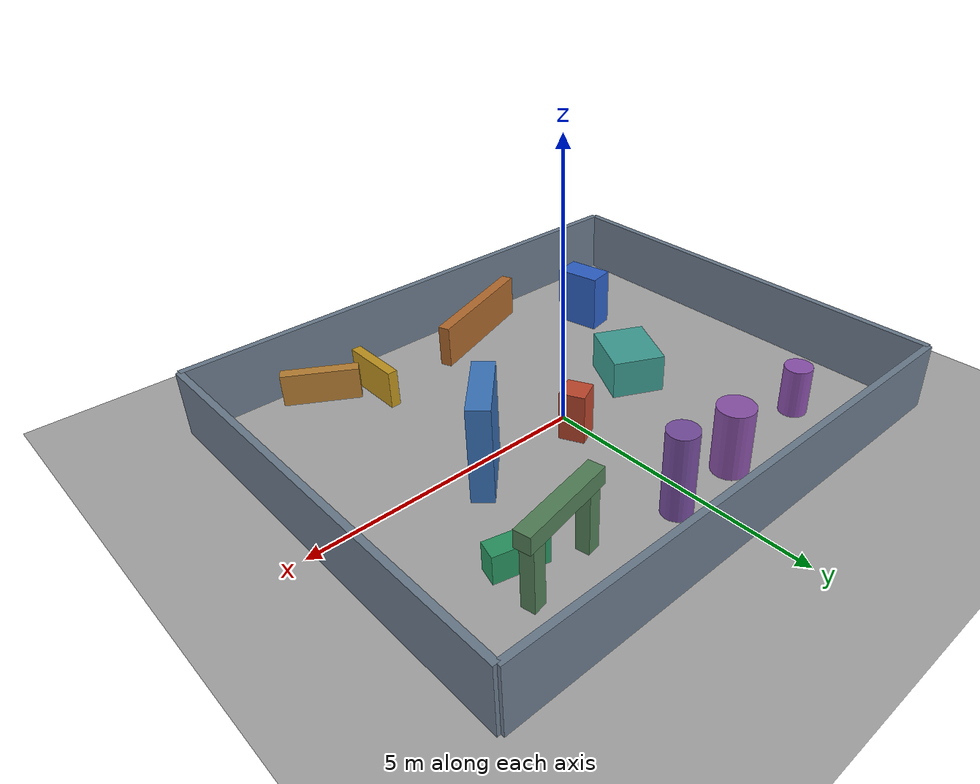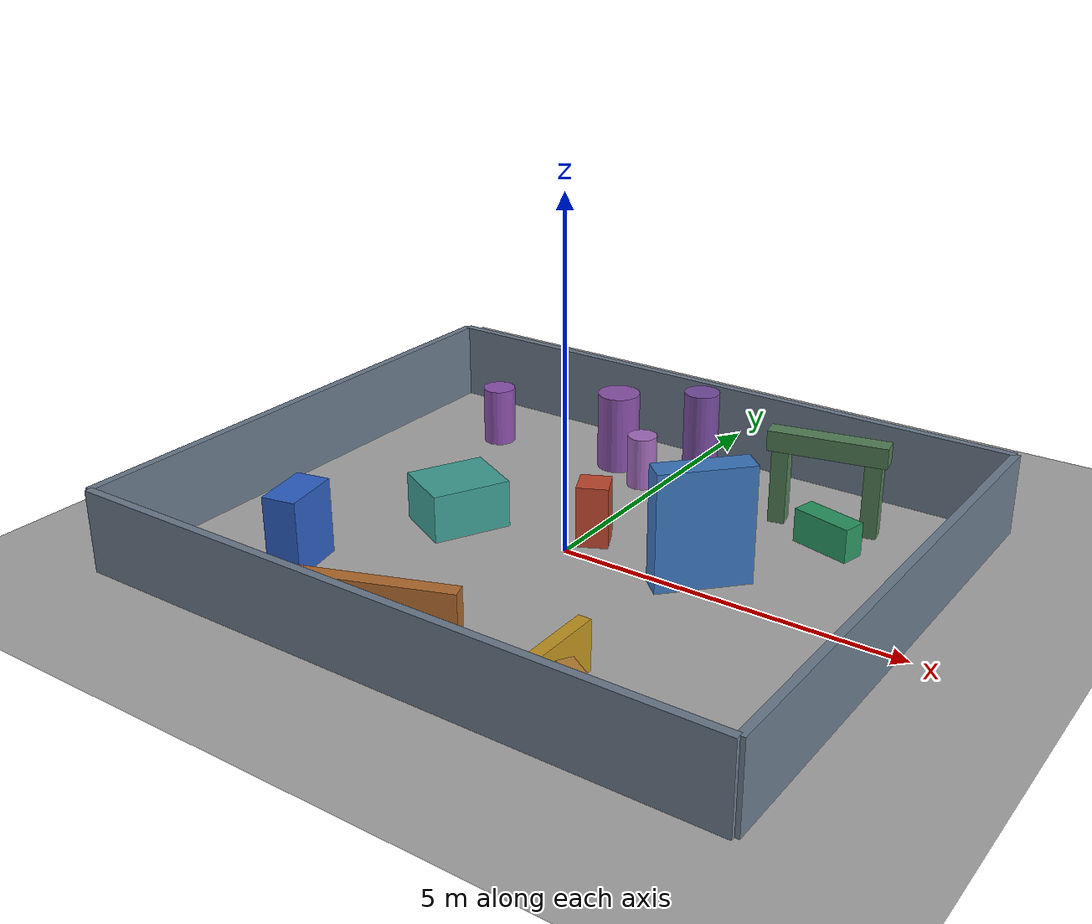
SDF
<?xml version="1.0" ?>
<sdf version="1.6">
  <world name="tilted_lidar_demo">
    <physics name="1ms" type="ignored">
      <max_step_size>0.001</max_step_size>
      <real_time_factor>1.0</real_time_factor>
    </physics>

    <plugin
      filename="gz-sim-physics-system"
      name="gz::sim::systems::Physics">
    </plugin>
    <plugin
      filename="gz-sim-sensors-system"
      name="gz::sim::systems::Sensors">
      <render_engine>ogre2</render_engine>
    </plugin>
    <plugin
      filename="gz-sim-scene-broadcaster-system"
      name="gz::sim::systems::SceneBroadcaster">
    </plugin>
    <plugin
      filename="gz-sim-user-commands-system"
      name="gz::sim::systems::UserCommands">
    </plugin>

    <light type="directional" name="sun">
      <cast_shadows>true</cast_shadows>
      <pose>0 0 10 0 0 0</pose>
      <diffuse>0.8 0.8 0.8 1</diffuse>
      <specular>0.2 0.2 0.2 1</specular>
      <attenuation>
        <range>1000</range>
        <constant>0.9</constant>
        <linear>0.01</linear>
        <quadratic>0.001</quadratic>
      </attenuation>
      <direction>-0.5 0.1 -0.9</direction>
    </light>

    <model name="ground_plane">
      <static>true</static>
      <link name="link">
        <collision name="collision">
          <geometry>
            <plane>
              <normal>0 0 1</normal>
              <size>11.2 9.6</size>
            </plane>
          </geometry>
        </collision>
        <visual name="visual">
          <geometry>
            <plane>
              <normal>0 0 1</normal>
              <size>11.2 9.6</size>
            </plane>
          </geometry>
          <material>
            <ambient>0.65 0.65 0.65 1</ambient>
            <diffuse>0.65 0.65 0.65 1</diffuse>
            <specular>0.2 0.2 0.2 1</specular>
          </material>
        </visual>
      </link>
    </model>

    <model name="north_wall">
      <static>true</static>
      <pose>0 4.0 0.6 0 0 0</pose>
      <link name="link">
        <collision name="collision">
          <geometry>
            <box>
              <size>9.6 0.12 1.2</size>
            </box>
          </geometry>
        </collision>
        <visual name="visual">
          <geometry>
            <box>
              <size>9.6 0.12 1.2</size>
            </box>
          </geometry>
          <material>
            <ambient>0.42 0.48 0.55 1</ambient>
            <diffuse>0.42 0.48 0.55 1</diffuse>
          </material>
        </visual>
      </link>
    </model>

    <model name="south_wall">
      <static>true</static>
      <pose>0 -4.0 0.6 0 0 0</pose>
      <link name="link">
        <collision name="collision">
          <geometry>
            <box>
              <size>9.6 0.12 1.2</size>
            </box>
          </geometry>
        </collision>
        <visual name="visual">
          <geometry>
            <box>
              <size>9.6 0.12 1.2</size>
            </box>
          </geometry>
          <material>
            <ambient>0.42 0.48 0.55 1</ambient>
            <diffuse>0.42 0.48 0.55 1</diffuse>
          </material>
        </visual>
      </link>
    </model>

    <model name="east_wall">
      <static>true</static>
      <pose>4.8 0 0.6 0 0 0</pose>
      <link name="link">
        <collision name="collision">
          <geometry>
            <box>
              <size>0.12 8.0 1.2</size>
            </box>
          </geometry>
        </collision>
        <visual name="visual">
          <geometry>
            <box>
              <size>0.12 8.0 1.2</size>
            </box>
          </geometry>
          <material>
            <ambient>0.42 0.48 0.55 1</ambient>
            <diffuse>0.42 0.48 0.55 1</diffuse>
          </material>
        </visual>
      </link>
    </model>

    <model name="west_wall">
      <static>true</static>
      <pose>-4.8 0 0.6 0 0 0</pose>
      <link name="link">
        <collision name="collision">
          <geometry>
            <box>
              <size>0.12 8.0 1.2</size>
            </box>
          </geometry>
        </collision>
        <visual name="visual">
          <geometry>
            <box>
              <size>0.12 8.0 1.2</size>
            </box>
          </geometry>
          <material>
            <ambient>0.42 0.48 0.55 1</ambient>
            <diffuse>0.42 0.48 0.55 1</diffuse>
          </material>
        </visual>
      </link>
    </model>

    <model name="center_column">
      <static>true</static>
      <pose>0.16 0.48 0.45 0 0 0.45</pose>
      <link name="link">
        <collision name="collision">
          <geometry>
            <box>
              <size>0.45 0.45 0.9</size>
            </box>
          </geometry>
        </collision>
        <visual name="visual">
          <geometry>
            <box>
              <size>0.45 0.45 0.9</size>
            </box>
          </geometry>
          <material>
            <ambient>0.75 0.28 0.18 1</ambient>
            <diffuse>0.75 0.28 0.18 1</diffuse>
          </material>
        </visual>
      </link>
    </model>

    <model name="low_block">
      <static>true</static>
      <pose>2.92 2.12 0.25 0 0 -0.25</pose>
      <link name="link">
        <collision name="collision">
          <geometry>
            <box>
              <size>0.9 0.35 0.5</size>
            </box>
          </geometry>
        </collision>
        <visual name="visual">
          <geometry>
            <box>
              <size>0.9 0.35 0.5</size>
            </box>
          </geometry>
          <material>
            <ambient>0.16 0.58 0.38 1</ambient>
            <diffuse>0.16 0.58 0.38 1</diffuse>
          </material>
        </visual>
      </link>
    </model>

    <model name="tall_block">
      <static>true</static>
      <pose>-2.76 -2.28 0.55 0 0 0.2</pose>
      <link name="link">
        <collision name="collision">
          <geometry>
            <box>
              <size>0.5 0.85 1.1</size>
            </box>
          </geometry>
        </collision>
        <visual name="visual">
          <geometry>
            <box>
              <size>0.5 0.85 1.1</size>
            </box>
          </geometry>
          <material>
            <ambient>0.18 0.38 0.78 1</ambient>
            <diffuse>0.18 0.38 0.78 1</diffuse>
          </material>
        </visual>
      </link>
    </model>

    <model name="narrow_barrier">
      <static>true</static>
      <pose>1.88 -2.88 0.35 0 0 1.5708</pose>
      <link name="link">
        <collision name="collision">
          <geometry>
            <box>
              <size>1.15 0.18 0.7</size>
            </box>
          </geometry>
        </collision>
        <visual name="visual">
          <geometry>
            <box>
              <size>1.15 0.18 0.7</size>
            </box>
          </geometry>
          <material>
            <ambient>0.75 0.58 0.12 1</ambient>
            <diffuse>0.75 0.58 0.12 1</diffuse>
          </material>
        </visual>
      </link>
    </model>

    <model name="round_pillar">
      <static>true</static>
      <pose>-3.08 2.60 0.45 0 0 0</pose>
      <link name="link">
        <collision name="collision">
          <geometry>
            <cylinder>
              <radius>0.25</radius>
              <length>0.9</length>
            </cylinder>
          </geometry>
        </collision>
        <visual name="visual">
          <geometry>
            <cylinder>
              <radius>0.25</radius>
              <length>0.9</length>
            </cylinder>
          </geometry>
          <material>
            <ambient>0.55 0.32 0.68 1</ambient>
            <diffuse>0.55 0.32 0.68 1</diffuse>
          </material>
        </visual>
      </link>
    </model>

    <model name="negative_y_long_wall">
      <static>true</static>
      <pose>-0.72 -3.20 0.4 0 0 0.35</pose>
      <link name="link">
        <collision name="collision">
          <geometry>
            <box>
              <size>2.4 0.22 0.8</size>
            </box>
          </geometry>
        </collision>
        <visual name="visual">
          <geometry>
            <box>
              <size>2.4 0.22 0.8</size>
            </box>
          </geometry>
          <material>
            <ambient>0.70 0.42 0.18 1</ambient>
            <diffuse>0.70 0.42 0.18 1</diffuse>
          </material>
        </visual>
      </link>
    </model>

    <model name="negative_y_short_wall">
      <static>true</static>
      <pose>2.68 -3.40 0.3 0 0 -0.55</pose>
      <link name="link">
        <collision name="collision">
          <geometry>
            <box>
              <size>1.35 0.22 0.6</size>
            </box>
          </geometry>
        </collision>
        <visual name="visual">
          <geometry>
            <box>
              <size>1.35 0.22 0.6</size>
            </box>
          </geometry>
          <material>
            <ambient>0.72 0.50 0.20 1</ambient>
            <diffuse>0.72 0.50 0.20 1</diffuse>
          </material>
        </visual>
      </link>
    </model>

    <model name="center_y_wide_block">
      <static>true</static>
      <pose>-1.76 -0.12 0.35 0 0 1.1</pose>
      <link name="link">
        <collision name="collision">
          <geometry>
            <box>
              <size>1.15 0.95 0.7</size>
            </box>
          </geometry>
        </collision>
        <visual name="visual">
          <geometry>
            <box>
              <size>1.15 0.95 0.7</size>
            </box>
          </geometry>
          <material>
            <ambient>0.24 0.62 0.58 1</ambient>
            <diffuse>0.24 0.62 0.58 1</diffuse>
          </material>
        </visual>
      </link>
    </model>

    <model name="center_y_tall_slab">
      <static>true</static>
      <pose>1.96 0.28 0.85 0 0 -0.75</pose>
      <link name="link">
        <collision name="collision">
          <geometry>
            <box>
              <size>0.38 1.35 1.7</size>
            </box>
          </geometry>
        </collision>
        <visual name="visual">
          <geometry>
            <box>
              <size>0.38 1.35 1.7</size>
            </box>
          </geometry>
          <material>
            <ambient>0.23 0.46 0.74 1</ambient>
            <diffuse>0.23 0.46 0.74 1</diffuse>
          </material>
        </visual>
      </link>
    </model>

    <model name="positive_y_cylinder_a">
      <static>true</static>
      <pose>-0.96 2.84 0.6 0 0 0</pose>
      <link name="link">
        <collision name="collision">
          <geometry>
            <cylinder>
              <radius>0.32</radius>
              <length>1.2</length>
            </cylinder>
          </geometry>
        </collision>
        <visual name="visual">
          <geometry>
            <cylinder>
              <radius>0.32</radius>
              <length>1.2</length>
            </cylinder>
          </geometry>
          <material>
            <ambient>0.54 0.32 0.66 1</ambient>
            <diffuse>0.54 0.32 0.66 1</diffuse>
          </material>
        </visual>
      </link>
    </model>

    <model name="positive_y_cylinder_b">
      <static>true</static>
      <pose>-0.28 2.44 0.4 0 0 0</pose>
      <link name="link">
        <collision name="collision">
          <geometry>
            <cylinder>
              <radius>0.22</radius>
              <length>0.8</length>
            </cylinder>
          </geometry>
        </collision>
        <visual name="visual">
          <geometry>
            <cylinder>
              <radius>0.22</radius>
              <length>0.8</length>
            </cylinder>
          </geometry>
          <material>
            <ambient>0.64 0.42 0.74 1</ambient>
            <diffuse>0.64 0.42 0.74 1</diffuse>
          </material>
        </visual>
      </link>
    </model>

    <model name="positive_y_cylinder_c">
      <static>true</static>
      <pose>0.44 2.92 0.75 0 0 0</pose>
      <link name="link">
        <collision name="collision">
          <geometry>
            <cylinder>
              <radius>0.26</radius>
              <length>1.5</length>
            </cylinder>
          </geometry>
        </collision>
        <visual name="visual">
          <geometry>
            <cylinder>
              <radius>0.26</radius>
              <length>1.5</length>
            </cylinder>
          </geometry>
          <material>
            <ambient>0.46 0.30 0.62 1</ambient>
            <diffuse>0.46 0.30 0.62 1</diffuse>
          </material>
        </visual>
      </link>
    </model>

    <model name="positive_y_overhead_bar">
      <static>true</static>
      <pose>2.60 2.68 1.25 0 0 0.2</pose>
      <link name="link">
        <collision name="collision">
          <geometry>
            <box>
              <size>1.7 0.28 0.3</size>
            </box>
          </geometry>
        </collision>
        <visual name="visual">
          <geometry>
            <box>
              <size>1.7 0.28 0.3</size>
            </box>
          </geometry>
          <material>
            <ambient>0.32 0.50 0.34 1</ambient>
            <diffuse>0.32 0.50 0.34 1</diffuse>
          </material>
        </visual>
      </link>
    </model>

    <model name="positive_y_left_post">
      <static>true</static>
      <pose>1.96 2.54 0.6 0 0 0.2</pose>
      <link name="link">
        <collision name="collision">
          <geometry>
            <box>
              <size>0.24 0.24 1.2</size>
            </box>
          </geometry>
        </collision>
        <visual name="visual">
          <geometry>
            <box>
              <size>0.24 0.24 1.2</size>
            </box>
          </geometry>
          <material>
            <ambient>0.32 0.50 0.34 1</ambient>
            <diffuse>0.32 0.50 0.34 1</diffuse>
          </material>
        </visual>
      </link>
    </model>

    <model name="positive_y_right_post">
      <static>true</static>
      <pose>3.24 2.82 0.6 0 0 0.2</pose>
      <link name="link">
        <collision name="collision">
          <geometry>
            <box>
              <size>0.24 0.24 1.2</size>
            </box>
          </geometry>
        </collision>
        <visual name="visual">
          <geometry>
            <box>
              <size>0.24 0.24 1.2</size>
            </box>
          </geometry>
          <material>
            <ambient>0.32 0.50 0.34 1</ambient>
            <diffuse>0.32 0.50 0.34 1</diffuse>
          </material>
        </visual>
      </link>
    </model>
  </world>
</sdf>
